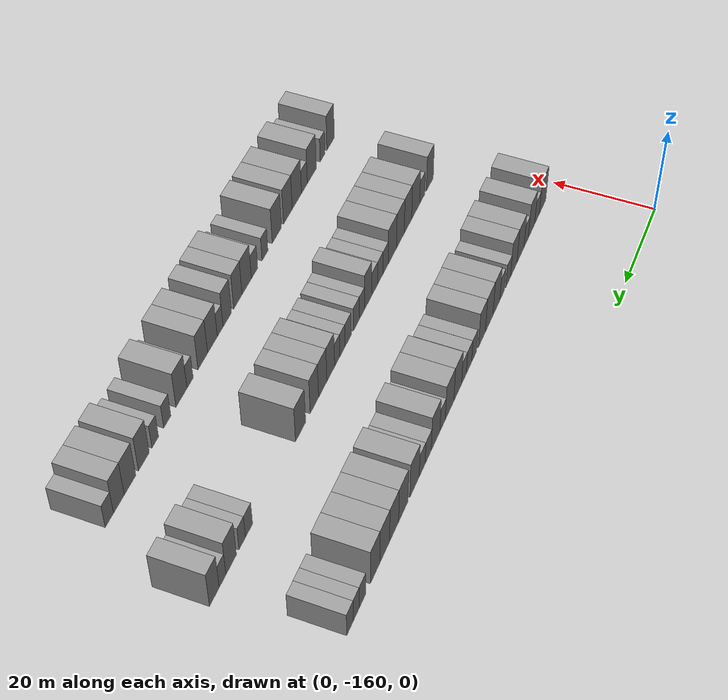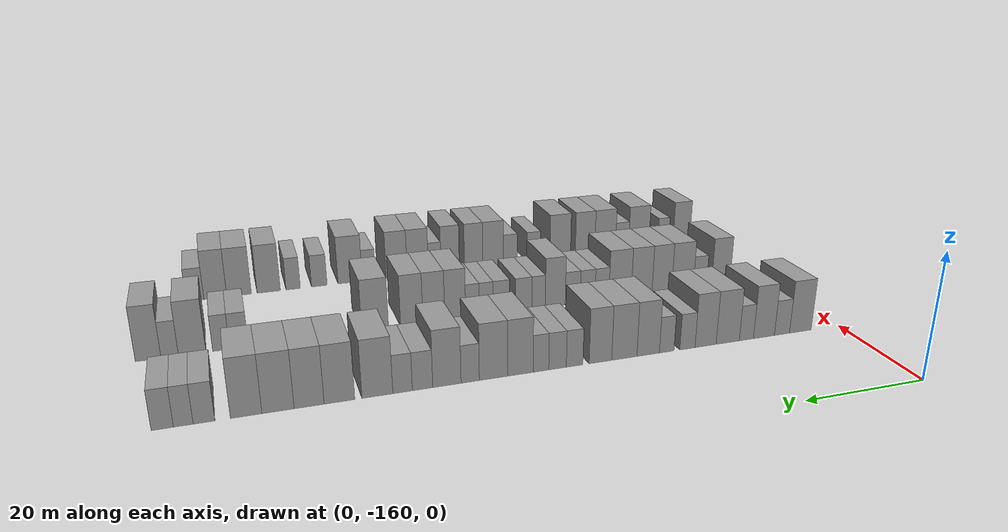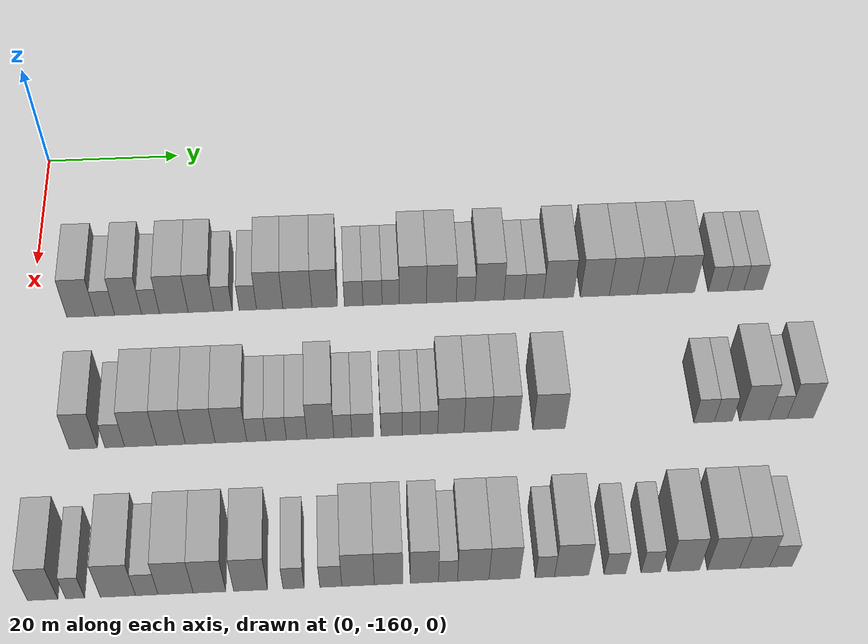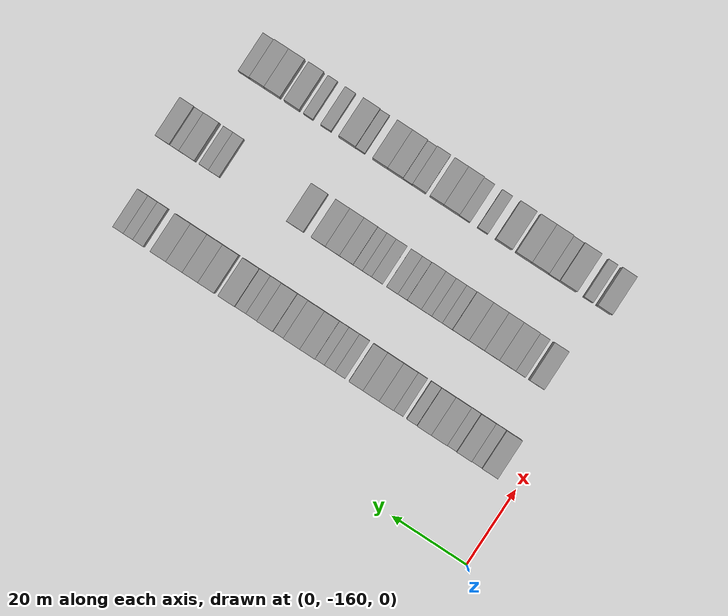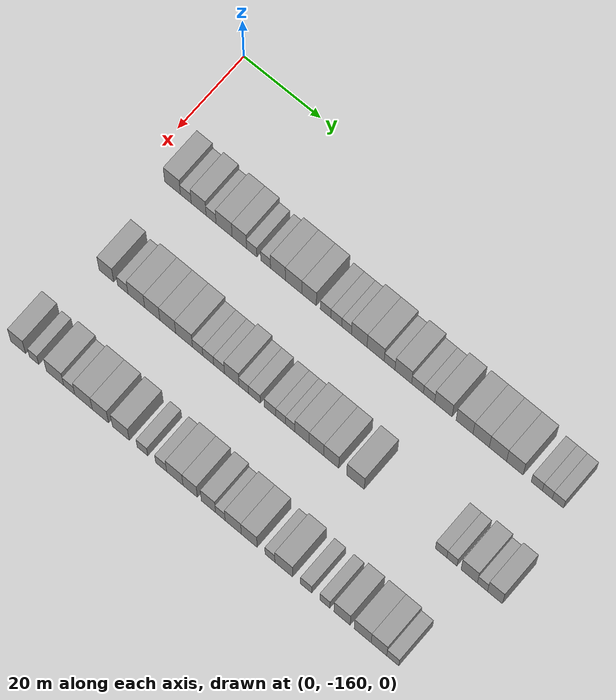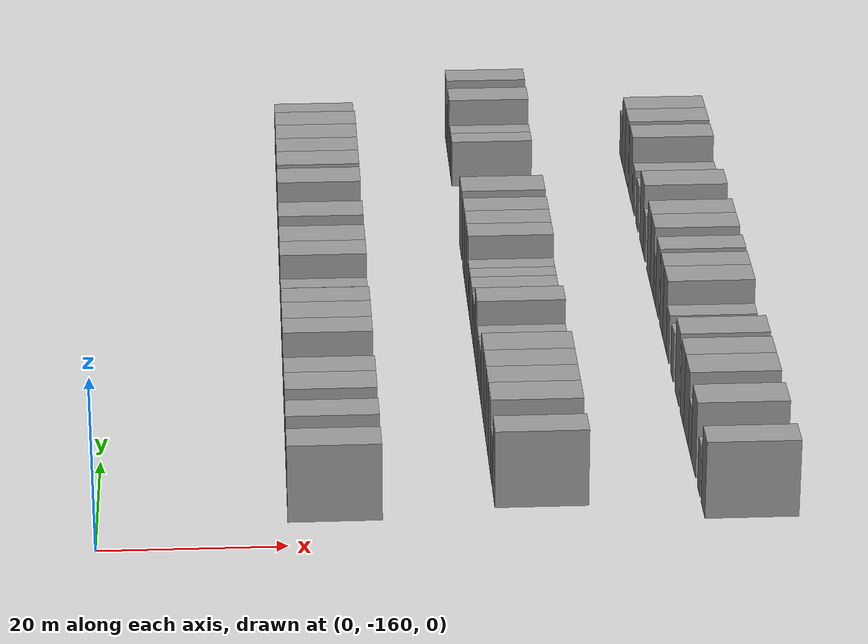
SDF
<sdf version="1.6">
 <world name="default">
  <model name="building_24">
   <static>1</static>
   <pose>25.0000 -152.7479 0 0.000000 0.000000 0.000000</pose>
   <link name="link">
    <pose>0 0 4.50 0 0 0</pose>
    <collision name="collision"><geometry><box><size>10.0000 4.0969 9.0000</size></box></geometry></collision>
    <visual name="visual">
     <cast_shadows>0</cast_shadows>
     <geometry><box><size>10.0000 4.0969 9.0000</size></box></geometry>
     <material>
      <script>
       <uri>model://grey_wall/materials/scripts</uri>
       <uri>model://grey_wall/materials/textures</uri>
       <name>vrc/grey_wall</name>
      </script>
     </material>
    </visual>
   </link>
  </model>
  <model name="building_25">
   <static>1</static>
   <pose>25.0000 -149.2939 0 0.000000 0.000000 0.000000</pose>
   <link name="link">
    <pose>0 0 3.00 0 0 0</pose>
    <collision name="collision"><geometry><box><size>10.0000 2.8112 6.0000</size></box></geometry></collision>
    <visual name="visual">
     <cast_shadows>0</cast_shadows>
     <geometry><box><size>10.0000 2.8112 6.0000</size></box></geometry>
     <material>
      <script>
       <uri>model://grey_wall/materials/scripts</uri>
       <uri>model://grey_wall/materials/textures</uri>
       <name>vrc/grey_wall</name>
      </script>
     </material>
    </visual>
   </link>
  </model>
  <model name="building_26">
   <static>1</static>
   <pose>25.0000 -145.9537 0 0.000000 0.000000 0.000000</pose>
   <link name="link">
    <pose>0 0 4.50 0 0 0</pose>
    <collision name="collision"><geometry><box><size>10.0000 3.8691 9.0000</size></box></geometry></collision>
    <visual name="visual">
     <cast_shadows>0</cast_shadows>
     <geometry><box><size>10.0000 3.8691 9.0000</size></box></geometry>
     <material>
      <script>
       <uri>model://grey_wall/materials/scripts</uri>
       <uri>model://grey_wall/materials/textures</uri>
       <name>vrc/grey_wall</name>
      </script>
     </material>
    </visual>
   </link>
  </model>
  <model name="building_27">
   <static>1</static>
   <pose>25.0000 -142.7333 0 0.000000 0.000000 0.000000</pose>
   <link name="link">
    <pose>0 0 3.00 0 0 0</pose>
    <collision name="collision"><geometry><box><size>10.0000 2.5717 6.0000</size></box></geometry></collision>
    <visual name="visual">
     <cast_shadows>0</cast_shadows>
     <geometry><box><size>10.0000 2.5717 6.0000</size></box></geometry>
     <material>
      <script>
       <uri>model://grey_wall/materials/scripts</uri>
       <uri>model://grey_wall/materials/textures</uri>
       <name>vrc/grey_wall</name>
      </script>
     </material>
    </visual>
   </link>
  </model>
  <model name="building_28">
   <static>1</static>
   <pose>25.0000 -139.3684 0 0.000000 0.000000 0.000000</pose>
   <link name="link">
    <pose>0 0 4.50 0 0 0</pose>
    <collision name="collision"><geometry><box><size>10.0000 4.1580 9.0000</size></box></geometry></collision>
    <visual name="visual">
     <cast_shadows>0</cast_shadows>
     <geometry><box><size>10.0000 4.1580 9.0000</size></box></geometry>
     <material>
      <script>
       <uri>model://grey_wall/materials/scripts</uri>
       <uri>model://grey_wall/materials/textures</uri>
       <name>vrc/grey_wall</name>
      </script>
     </material>
    </visual>
   </link>
  </model>
  <model name="building_29">
   <static>1</static>
   <pose>25.0000 -135.4226 0 0.000000 0.000000 0.000000</pose>
   <link name="link">
    <pose>0 0 4.50 0 0 0</pose>
    <collision name="collision"><geometry><box><size>10.0000 3.7335 9.0000</size></box></geometry></collision>
    <visual name="visual">
     <cast_shadows>0</cast_shadows>
     <geometry><box><size>10.0000 3.7335 9.0000</size></box></geometry>
     <material>
      <script>
       <uri>model://grey_wall/materials/scripts</uri>
       <uri>model://grey_wall/materials/textures</uri>
       <name>vrc/grey_wall</name>
      </script>
     </material>
    </visual>
   </link>
  </model>
  <model name="building_30">
   <static>1</static>
   <pose>25.0000 -132.2289 0 0.000000 0.000000 0.000000</pose>
   <link name="link">
    <pose>0 0 3.00 0 0 0</pose>
    <collision name="collision"><geometry><box><size>10.0000 2.6539 6.0000</size></box></geometry></collision>
    <visual name="visual">
     <cast_shadows>0</cast_shadows>
     <geometry><box><size>10.0000 2.6539 6.0000</size></box></geometry>
     <material>
      <script>
       <uri>model://grey_wall/materials/scripts</uri>
       <uri>model://grey_wall/materials/textures</uri>
       <name>vrc/grey_wall</name>
      </script>
     </material>
    </visual>
   </link>
  </model>
  <model name="building_31">
   <static>1</static>
   <pose>25.0000 -128.6428 0 0.000000 0.000000 0.000000</pose>
   <link name="link">
    <pose>0 0 3.00 0 0 0</pose>
    <collision name="collision"><geometry><box><size>10.0000 2.5184 6.0000</size></box></geometry></collision>
    <visual name="visual">
     <cast_shadows>0</cast_shadows>
     <geometry><box><size>10.0000 2.5184 6.0000</size></box></geometry>
     <material>
      <script>
       <uri>model://grey_wall/materials/scripts</uri>
       <uri>model://grey_wall/materials/textures</uri>
       <name>vrc/grey_wall</name>
      </script>
     </material>
    </visual>
   </link>
  </model>
  <model name="building_32">
   <static>1</static>
   <pose>25.0000 -125.4761 0 0.000000 0.000000 0.000000</pose>
   <link name="link">
    <pose>0 0 4.50 0 0 0</pose>
    <collision name="collision"><geometry><box><size>10.0000 3.8151 9.0000</size></box></geometry></collision>
    <visual name="visual">
     <cast_shadows>0</cast_shadows>
     <geometry><box><size>10.0000 3.8151 9.0000</size></box></geometry>
     <material>
      <script>
       <uri>model://grey_wall/materials/scripts</uri>
       <uri>model://grey_wall/materials/textures</uri>
       <name>vrc/grey_wall</name>
      </script>
     </material>
    </visual>
   </link>
  </model>
  <model name="building_33">
   <static>1</static>
   <pose>25.0000 -121.4594 0 0.000000 0.000000 0.000000</pose>
   <link name="link">
    <pose>0 0 4.50 0 0 0</pose>
    <collision name="collision"><geometry><box><size>10.0000 4.2183 9.0000</size></box></geometry></collision>
    <visual name="visual">
     <cast_shadows>0</cast_shadows>
     <geometry><box><size>10.0000 4.2183 9.0000</size></box></geometry>
     <material>
      <script>
       <uri>model://grey_wall/materials/scripts</uri>
       <uri>model://grey_wall/materials/textures</uri>
       <name>vrc/grey_wall</name>
      </script>
     </material>
    </visual>
   </link>
  </model>
  <model name="building_34">
   <static>1</static>
   <pose>25.0000 -117.4892 0 0.000000 0.000000 0.000000</pose>
   <link name="link">
    <pose>0 0 4.50 0 0 0</pose>
    <collision name="collision"><geometry><box><size>10.0000 3.7220 9.0000</size></box></geometry></collision>
    <visual name="visual">
     <cast_shadows>0</cast_shadows>
     <geometry><box><size>10.0000 3.7220 9.0000</size></box></geometry>
     <material>
      <script>
       <uri>model://grey_wall/materials/scripts</uri>
       <uri>model://grey_wall/materials/textures</uri>
       <name>vrc/grey_wall</name>
      </script>
     </material>
    </visual>
   </link>
  </model>
  <model name="building_35">
   <static>1</static>
   <pose>25.0000 -113.2872 0 0.000000 0.000000 0.000000</pose>
   <link name="link">
    <pose>0 0 3.00 0 0 0</pose>
    <collision name="collision"><geometry><box><size>10.0000 2.6820 6.0000</size></box></geometry></collision>
    <visual name="visual">
     <cast_shadows>0</cast_shadows>
     <geometry><box><size>10.0000 2.6820 6.0000</size></box></geometry>
     <material>
      <script>
       <uri>model://grey_wall/materials/scripts</uri>
       <uri>model://grey_wall/materials/textures</uri>
       <name>vrc/grey_wall</name>
      </script>
     </material>
    </visual>
   </link>
  </model>
  <model name="building_36">
   <static>1</static>
   <pose>25.0000 -110.5451 0 0.000000 0.000000 0.000000</pose>
   <link name="link">
    <pose>0 0 3.00 0 0 0</pose>
    <collision name="collision"><geometry><box><size>10.0000 2.8020 6.0000</size></box></geometry></collision>
    <visual name="visual">
     <cast_shadows>0</cast_shadows>
     <geometry><box><size>10.0000 2.8020 6.0000</size></box></geometry>
     <material>
      <script>
       <uri>model://grey_wall/materials/scripts</uri>
       <uri>model://grey_wall/materials/textures</uri>
       <name>vrc/grey_wall</name>
      </script>
     </material>
    </visual>
   </link>
  </model>
  <model name="building_37">
   <static>1</static>
   <pose>25.0000 -107.9055 0 0.000000 0.000000 0.000000</pose>
   <link name="link">
    <pose>0 0 3.00 0 0 0</pose>
    <collision name="collision"><geometry><box><size>10.0000 2.4773 6.0000</size></box></geometry></collision>
    <visual name="visual">
     <cast_shadows>0</cast_shadows>
     <geometry><box><size>10.0000 2.4773 6.0000</size></box></geometry>
     <material>
      <script>
       <uri>model://grey_wall/materials/scripts</uri>
       <uri>model://grey_wall/materials/textures</uri>
       <name>vrc/grey_wall</name>
      </script>
     </material>
    </visual>
   </link>
  </model>
  <model name="building_38">
   <static>1</static>
   <pose>25.0000 -104.6841 0 0.000000 0.000000 0.000000</pose>
   <link name="link">
    <pose>0 0 4.50 0 0 0</pose>
    <collision name="collision"><geometry><box><size>10.0000 3.9654 9.0000</size></box></geometry></collision>
    <visual name="visual">
     <cast_shadows>0</cast_shadows>
     <geometry><box><size>10.0000 3.9654 9.0000</size></box></geometry>
     <material>
      <script>
       <uri>model://grey_wall/materials/scripts</uri>
       <uri>model://grey_wall/materials/textures</uri>
       <name>vrc/grey_wall</name>
      </script>
     </material>
    </visual>
   </link>
  </model>
  <model name="building_39">
   <static>1</static>
   <pose>25.0000 -100.5283 0 0.000000 0.000000 0.000000</pose>
   <link name="link">
    <pose>0 0 4.50 0 0 0</pose>
    <collision name="collision"><geometry><box><size>10.0000 4.3463 9.0000</size></box></geometry></collision>
    <visual name="visual">
     <cast_shadows>0</cast_shadows>
     <geometry><box><size>10.0000 4.3463 9.0000</size></box></geometry>
     <material>
      <script>
       <uri>model://grey_wall/materials/scripts</uri>
       <uri>model://grey_wall/materials/textures</uri>
       <name>vrc/grey_wall</name>
      </script>
     </material>
    </visual>
   </link>
  </model>
  <model name="building_40">
   <static>1</static>
   <pose>25.0000 -96.9759 0 0.000000 0.000000 0.000000</pose>
   <link name="link">
    <pose>0 0 3.00 0 0 0</pose>
    <collision name="collision"><geometry><box><size>10.0000 2.7586 6.0000</size></box></geometry></collision>
    <visual name="visual">
     <cast_shadows>0</cast_shadows>
     <geometry><box><size>10.0000 2.7586 6.0000</size></box></geometry>
     <material>
      <script>
       <uri>model://grey_wall/materials/scripts</uri>
       <uri>model://grey_wall/materials/textures</uri>
       <name>vrc/grey_wall</name>
      </script>
     </material>
    </visual>
   </link>
  </model>
  <model name="building_41">
   <static>1</static>
   <pose>25.0000 -93.4938 0 0.000000 0.000000 0.000000</pose>
   <link name="link">
    <pose>0 0 4.50 0 0 0</pose>
    <collision name="collision"><geometry><box><size>10.0000 4.2056 9.0000</size></box></geometry></collision>
    <visual name="visual">
     <cast_shadows>0</cast_shadows>
     <geometry><box><size>10.0000 4.2056 9.0000</size></box></geometry>
     <material>
      <script>
       <uri>model://grey_wall/materials/scripts</uri>
       <uri>model://grey_wall/materials/textures</uri>
       <name>vrc/grey_wall</name>
      </script>
     </material>
    </visual>
   </link>
  </model>
  <model name="building_42">
   <static>1</static>
   <pose>25.0000 -89.9001 0 0.000000 0.000000 0.000000</pose>
   <link name="link">
    <pose>0 0 3.00 0 0 0</pose>
    <collision name="collision"><geometry><box><size>10.0000 2.9819 6.0000</size></box></geometry></collision>
    <visual name="visual">
     <cast_shadows>0</cast_shadows>
     <geometry><box><size>10.0000 2.9819 6.0000</size></box></geometry>
     <material>
      <script>
       <uri>model://grey_wall/materials/scripts</uri>
       <uri>model://grey_wall/materials/textures</uri>
       <name>vrc/grey_wall</name>
      </script>
     </material>
    </visual>
   </link>
  </model>
  <model name="building_43">
   <static>1</static>
   <pose>25.0000 -86.9947 0 0.000000 0.000000 0.000000</pose>
   <link name="link">
    <pose>0 0 3.00 0 0 0</pose>
    <collision name="collision"><geometry><box><size>10.0000 2.8288 6.0000</size></box></geometry></collision>
    <visual name="visual">
     <cast_shadows>0</cast_shadows>
     <geometry><box><size>10.0000 2.8288 6.0000</size></box></geometry>
     <material>
      <script>
       <uri>model://grey_wall/materials/scripts</uri>
       <uri>model://grey_wall/materials/textures</uri>
       <name>vrc/grey_wall</name>
      </script>
     </material>
    </visual>
   </link>
  </model>
  <model name="building_44">
   <static>1</static>
   <pose>25.0000 -83.3818 0 0.000000 0.000000 0.000000</pose>
   <link name="link">
    <pose>0 0 4.50 0 0 0</pose>
    <collision name="collision"><geometry><box><size>10.0000 4.3971 9.0000</size></box></geometry></collision>
    <visual name="visual">
     <cast_shadows>0</cast_shadows>
     <geometry><box><size>10.0000 4.3971 9.0000</size></box></geometry>
     <material>
      <script>
       <uri>model://grey_wall/materials/scripts</uri>
       <uri>model://grey_wall/materials/textures</uri>
       <name>vrc/grey_wall</name>
      </script>
     </material>
    </visual>
   </link>
  </model>
  <model name="building_45">
   <static>1</static>
   <pose>25.0000 -78.0550 0 0.000000 0.000000 0.000000</pose>
   <link name="link">
    <pose>0 0 4.50 0 0 0</pose>
    <collision name="collision"><geometry><box><size>10.0000 4.2565 9.0000</size></box></geometry></collision>
    <visual name="visual">
     <cast_shadows>0</cast_shadows>
     <geometry><box><size>10.0000 4.2565 9.0000</size></box></geometry>
     <material>
      <script>
       <uri>model://grey_wall/materials/scripts</uri>
       <uri>model://grey_wall/materials/textures</uri>
       <name>vrc/grey_wall</name>
      </script>
     </material>
    </visual>
   </link>
  </model>
  <model name="building_46">
   <static>1</static>
   <pose>25.0000 -73.8800 0 0.000000 0.000000 0.000000</pose>
   <link name="link">
    <pose>0 0 4.50 0 0 0</pose>
    <collision name="collision"><geometry><box><size>10.0000 4.0935 9.0000</size></box></geometry></collision>
    <visual name="visual">
     <cast_shadows>0</cast_shadows>
     <geometry><box><size>10.0000 4.0935 9.0000</size></box></geometry>
     <material>
      <script>
       <uri>model://grey_wall/materials/scripts</uri>
       <uri>model://grey_wall/materials/textures</uri>
       <name>vrc/grey_wall</name>
      </script>
     </material>
    </visual>
   </link>
  </model>
  <model name="building_47">
   <static>1</static>
   <pose>25.0000 -69.6777 0 0.000000 0.000000 0.000000</pose>
   <link name="link">
    <pose>0 0 4.50 0 0 0</pose>
    <collision name="collision"><geometry><box><size>10.0000 4.3112 9.0000</size></box></geometry></collision>
    <visual name="visual">
     <cast_shadows>0</cast_shadows>
     <geometry><box><size>10.0000 4.3112 9.0000</size></box></geometry>
     <material>
      <script>
       <uri>model://grey_wall/materials/scripts</uri>
       <uri>model://grey_wall/materials/textures</uri>
       <name>vrc/grey_wall</name>
      </script>
     </material>
    </visual>
   </link>
  </model>
  <model name="building_48">
   <static>1</static>
   <pose>25.0000 -65.4500 0 0.000000 0.000000 0.000000</pose>
   <link name="link">
    <pose>0 0 4.50 0 0 0</pose>
    <collision name="collision"><geometry><box><size>10.0000 4.1443 9.0000</size></box></geometry></collision>
    <visual name="visual">
     <cast_shadows>0</cast_shadows>
     <geometry><box><size>10.0000 4.1443 9.0000</size></box></geometry>
     <material>
      <script>
       <uri>model://grey_wall/materials/scripts</uri>
       <uri>model://grey_wall/materials/textures</uri>
       <name>vrc/grey_wall</name>
      </script>
     </material>
    </visual>
   </link>
  </model>
  <model name="building_49">
   <static>1</static>
   <pose>25.0000 -59.9845 0 0.000000 0.000000 0.000000</pose>
   <link name="link">
    <pose>0 0 3.00 0 0 0</pose>
    <collision name="collision"><geometry><box><size>10.0000 2.7867 6.0000</size></box></geometry></collision>
    <visual name="visual">
     <cast_shadows>0</cast_shadows>
     <geometry><box><size>10.0000 2.7867 6.0000</size></box></geometry>
     <material>
      <script>
       <uri>model://grey_wall/materials/scripts</uri>
       <uri>model://grey_wall/materials/textures</uri>
       <name>vrc/grey_wall</name>
      </script>
     </material>
    </visual>
   </link>
  </model>
  <model name="building_50">
   <static>1</static>
   <pose>25.0000 -57.3420 0 0.000000 0.000000 0.000000</pose>
   <link name="link">
    <pose>0 0 3.00 0 0 0</pose>
    <collision name="collision"><geometry><box><size>10.0000 2.4983 6.0000</size></box></geometry></collision>
    <visual name="visual">
     <cast_shadows>0</cast_shadows>
     <geometry><box><size>10.0000 2.4983 6.0000</size></box></geometry>
     <material>
      <script>
       <uri>model://grey_wall/materials/scripts</uri>
       <uri>model://grey_wall/materials/textures</uri>
       <name>vrc/grey_wall</name>
      </script>
     </material>
    </visual>
   </link>
  </model>
  <model name="building_51">
   <static>1</static>
   <pose>25.0000 -54.7018 0 0.000000 0.000000 0.000000</pose>
   <link name="link">
    <pose>0 0 3.00 0 0 0</pose>
    <collision name="collision"><geometry><box><size>10.0000 2.7822 6.0000</size></box></geometry></collision>
    <visual name="visual">
     <cast_shadows>0</cast_shadows>
     <geometry><box><size>10.0000 2.7822 6.0000</size></box></geometry>
     <material>
      <script>
       <uri>model://grey_wall/materials/scripts</uri>
       <uri>model://grey_wall/materials/textures</uri>
       <name>vrc/grey_wall</name>
      </script>
     </material>
    </visual>
   </link>
  </model>
  <model name="building_149">
   <static>1</static>
   <pose>47.0000 -150.7483 0 0.000000 0.000000 0.000000</pose>
   <link name="link">
    <pose>0 0 4.50 0 0 0</pose>
    <collision name="collision"><geometry><box><size>10.0000 3.8109 9.0000</size></box></geometry></collision>
    <visual name="visual">
     <cast_shadows>0</cast_shadows>
     <geometry><box><size>10.0000 3.8109 9.0000</size></box></geometry>
     <material>
      <script>
       <uri>model://grey_wall/materials/scripts</uri>
       <uri>model://grey_wall/materials/textures</uri>
       <name>vrc/grey_wall</name>
      </script>
     </material>
    </visual>
   </link>
  </model>
  <model name="building_150">
   <static>1</static>
   <pose>47.0000 -146.4935 0 0.000000 0.000000 0.000000</pose>
   <link name="link">
    <pose>0 0 3.00 0 0 0</pose>
    <collision name="collision"><geometry><box><size>10.0000 2.6988 6.0000</size></box></geometry></collision>
    <visual name="visual">
     <cast_shadows>0</cast_shadows>
     <geometry><box><size>10.0000 2.6988 6.0000</size></box></geometry>
     <material>
      <script>
       <uri>model://grey_wall/materials/scripts</uri>
       <uri>model://grey_wall/materials/textures</uri>
       <name>vrc/grey_wall</name>
      </script>
     </material>
    </visual>
   </link>
  </model>
  <model name="building_151">
   <static>1</static>
   <pose>47.0000 -142.9771 0 0.000000 0.000000 0.000000</pose>
   <link name="link">
    <pose>0 0 4.50 0 0 0</pose>
    <collision name="collision"><geometry><box><size>10.0000 4.3339 9.0000</size></box></geometry></collision>
    <visual name="visual">
     <cast_shadows>0</cast_shadows>
     <geometry><box><size>10.0000 4.3339 9.0000</size></box></geometry>
     <material>
      <script>
       <uri>model://grey_wall/materials/scripts</uri>
       <uri>model://grey_wall/materials/textures</uri>
       <name>vrc/grey_wall</name>
      </script>
     </material>
    </visual>
   </link>
  </model>
  <model name="building_152">
   <static>1</static>
   <pose>47.0000 -138.8488 0 0.000000 0.000000 0.000000</pose>
   <link name="link">
    <pose>0 0 4.50 0 0 0</pose>
    <collision name="collision"><geometry><box><size>10.0000 3.9226 9.0000</size></box></geometry></collision>
    <visual name="visual">
     <cast_shadows>0</cast_shadows>
     <geometry><box><size>10.0000 3.9226 9.0000</size></box></geometry>
     <material>
      <script>
       <uri>model://grey_wall/materials/scripts</uri>
       <uri>model://grey_wall/materials/textures</uri>
       <name>vrc/grey_wall</name>
      </script>
     </material>
    </visual>
   </link>
  </model>
  <model name="building_153">
   <static>1</static>
   <pose>47.0000 -134.8536 0 0.000000 0.000000 0.000000</pose>
   <link name="link">
    <pose>0 0 4.50 0 0 0</pose>
    <collision name="collision"><geometry><box><size>10.0000 4.0679 9.0000</size></box></geometry></collision>
    <visual name="visual">
     <cast_shadows>0</cast_shadows>
     <geometry><box><size>10.0000 4.0679 9.0000</size></box></geometry>
     <material>
      <script>
       <uri>model://grey_wall/materials/scripts</uri>
       <uri>model://grey_wall/materials/textures</uri>
       <name>vrc/grey_wall</name>
      </script>
     </material>
    </visual>
   </link>
  </model>
  <model name="building_154">
   <static>1</static>
   <pose>47.0000 -130.6628 0 0.000000 0.000000 0.000000</pose>
   <link name="link">
    <pose>0 0 4.50 0 0 0</pose>
    <collision name="collision"><geometry><box><size>10.0000 4.3137 9.0000</size></box></geometry></collision>
    <visual name="visual">
     <cast_shadows>0</cast_shadows>
     <geometry><box><size>10.0000 4.3137 9.0000</size></box></geometry>
     <material>
      <script>
       <uri>model://grey_wall/materials/scripts</uri>
       <uri>model://grey_wall/materials/textures</uri>
       <name>vrc/grey_wall</name>
      </script>
     </material>
    </visual>
   </link>
  </model>
  <model name="building_155">
   <static>1</static>
   <pose>47.0000 -127.1813 0 0.000000 0.000000 0.000000</pose>
   <link name="link">
    <pose>0 0 3.00 0 0 0</pose>
    <collision name="collision"><geometry><box><size>10.0000 2.6493 6.0000</size></box></geometry></collision>
    <visual name="visual">
     <cast_shadows>0</cast_shadows>
     <geometry><box><size>10.0000 2.6493 6.0000</size></box></geometry>
     <material>
      <script>
       <uri>model://grey_wall/materials/scripts</uri>
       <uri>model://grey_wall/materials/textures</uri>
       <name>vrc/grey_wall</name>
      </script>
     </material>
    </visual>
   </link>
  </model>
  <model name="building_156">
   <static>1</static>
   <pose>47.0000 -124.4696 0 0.000000 0.000000 0.000000</pose>
   <link name="link">
    <pose>0 0 3.00 0 0 0</pose>
    <collision name="collision"><geometry><box><size>10.0000 2.7742 6.0000</size></box></geometry></collision>
    <visual name="visual">
     <cast_shadows>0</cast_shadows>
     <geometry><box><size>10.0000 2.7742 6.0000</size></box></geometry>
     <material>
      <script>
       <uri>model://grey_wall/materials/scripts</uri>
       <uri>model://grey_wall/materials/textures</uri>
       <name>vrc/grey_wall</name>
      </script>
     </material>
    </visual>
   </link>
  </model>
  <model name="building_157">
   <static>1</static>
   <pose>47.0000 -121.6845 0 0.000000 0.000000 0.000000</pose>
   <link name="link">
    <pose>0 0 3.00 0 0 0</pose>
    <collision name="collision"><geometry><box><size>10.0000 2.7959 6.0000</size></box></geometry></collision>
    <visual name="visual">
     <cast_shadows>0</cast_shadows>
     <geometry><box><size>10.0000 2.7959 6.0000</size></box></geometry>
     <material>
      <script>
       <uri>model://grey_wall/materials/scripts</uri>
       <uri>model://grey_wall/materials/textures</uri>
       <name>vrc/grey_wall</name>
      </script>
     </material>
    </visual>
   </link>
  </model>
  <model name="building_158">
   <static>1</static>
   <pose>47.0000 -118.4428 0 0.000000 0.000000 0.000000</pose>
   <link name="link">
    <pose>0 0 4.50 0 0 0</pose>
    <collision name="collision"><geometry><box><size>10.0000 3.6875 9.0000</size></box></geometry></collision>
    <visual name="visual">
     <cast_shadows>0</cast_shadows>
     <geometry><box><size>10.0000 3.6875 9.0000</size></box></geometry>
     <material>
      <script>
       <uri>model://grey_wall/materials/scripts</uri>
       <uri>model://grey_wall/materials/textures</uri>
       <name>vrc/grey_wall</name>
      </script>
     </material>
    </visual>
   </link>
  </model>
  <model name="building_159">
   <static>1</static>
   <pose>47.0000 -115.3745 0 0.000000 0.000000 0.000000</pose>
   <link name="link">
    <pose>0 0 3.00 0 0 0</pose>
    <collision name="collision"><geometry><box><size>10.0000 2.4492 6.0000</size></box></geometry></collision>
    <visual name="visual">
     <cast_shadows>0</cast_shadows>
     <geometry><box><size>10.0000 2.4492 6.0000</size></box></geometry>
     <material>
      <script>
       <uri>model://grey_wall/materials/scripts</uri>
       <uri>model://grey_wall/materials/textures</uri>
       <name>vrc/grey_wall</name>
      </script>
     </material>
    </visual>
   </link>
  </model>
  <model name="building_160">
   <static>1</static>
   <pose>47.0000 -112.6530 0 0.000000 0.000000 0.000000</pose>
   <link name="link">
    <pose>0 0 3.00 0 0 0</pose>
    <collision name="collision"><geometry><box><size>10.0000 2.9938 6.0000</size></box></geometry></collision>
    <visual name="visual">
     <cast_shadows>0</cast_shadows>
     <geometry><box><size>10.0000 2.9938 6.0000</size></box></geometry>
     <material>
      <script>
       <uri>model://grey_wall/materials/scripts</uri>
       <uri>model://grey_wall/materials/textures</uri>
       <name>vrc/grey_wall</name>
      </script>
     </material>
    </visual>
   </link>
  </model>
  <model name="building_161">
   <static>1</static>
   <pose>47.0000 -108.6886 0 0.000000 0.000000 0.000000</pose>
   <link name="link">
    <pose>0 0 3.00 0 0 0</pose>
    <collision name="collision"><geometry><box><size>10.0000 2.9349 6.0000</size></box></geometry></collision>
    <visual name="visual">
     <cast_shadows>0</cast_shadows>
     <geometry><box><size>10.0000 2.9349 6.0000</size></box></geometry>
     <material>
      <script>
       <uri>model://grey_wall/materials/scripts</uri>
       <uri>model://grey_wall/materials/textures</uri>
       <name>vrc/grey_wall</name>
      </script>
     </material>
    </visual>
   </link>
  </model>
  <model name="building_162">
   <static>1</static>
   <pose>47.0000 -105.9998 0 0.000000 0.000000 0.000000</pose>
   <link name="link">
    <pose>0 0 3.00 0 0 0</pose>
    <collision name="collision"><geometry><box><size>10.0000 2.4426 6.0000</size></box></geometry></collision>
    <visual name="visual">
     <cast_shadows>0</cast_shadows>
     <geometry><box><size>10.0000 2.4426 6.0000</size></box></geometry>
     <material>
      <script>
       <uri>model://grey_wall/materials/scripts</uri>
       <uri>model://grey_wall/materials/textures</uri>
       <name>vrc/grey_wall</name>
      </script>
     </material>
    </visual>
   </link>
  </model>
  <model name="building_163">
   <static>1</static>
   <pose>47.0000 -103.5715 0 0.000000 0.000000 0.000000</pose>
   <link name="link">
    <pose>0 0 3.00 0 0 0</pose>
    <collision name="collision"><geometry><box><size>10.0000 2.4141 6.0000</size></box></geometry></collision>
    <visual name="visual">
     <cast_shadows>0</cast_shadows>
     <geometry><box><size>10.0000 2.4141 6.0000</size></box></geometry>
     <material>
      <script>
       <uri>model://grey_wall/materials/scripts</uri>
       <uri>model://grey_wall/materials/textures</uri>
       <name>vrc/grey_wall</name>
      </script>
     </material>
    </visual>
   </link>
  </model>
  <model name="building_164">
   <static>1</static>
   <pose>47.0000 -100.5625 0 0.000000 0.000000 0.000000</pose>
   <link name="link">
    <pose>0 0 4.50 0 0 0</pose>
    <collision name="collision"><geometry><box><size>10.0000 3.6038 9.0000</size></box></geometry></collision>
    <visual name="visual">
     <cast_shadows>0</cast_shadows>
     <geometry><box><size>10.0000 3.6038 9.0000</size></box></geometry>
     <material>
      <script>
       <uri>model://grey_wall/materials/scripts</uri>
       <uri>model://grey_wall/materials/textures</uri>
       <name>vrc/grey_wall</name>
      </script>
     </material>
    </visual>
   </link>
  </model>
  <model name="building_165">
   <static>1</static>
   <pose>47.0000 -96.8923 0 0.000000 0.000000 0.000000</pose>
   <link name="link">
    <pose>0 0 4.50 0 0 0</pose>
    <collision name="collision"><geometry><box><size>10.0000 3.7366 9.0000</size></box></geometry></collision>
    <visual name="visual">
     <cast_shadows>0</cast_shadows>
     <geometry><box><size>10.0000 3.7366 9.0000</size></box></geometry>
     <material>
      <script>
       <uri>model://grey_wall/materials/scripts</uri>
       <uri>model://grey_wall/materials/textures</uri>
       <name>vrc/grey_wall</name>
      </script>
     </material>
    </visual>
   </link>
  </model>
  <model name="building_166">
   <static>1</static>
   <pose>47.0000 -93.1430 0 0.000000 0.000000 0.000000</pose>
   <link name="link">
    <pose>0 0 4.50 0 0 0</pose>
    <collision name="collision"><geometry><box><size>10.0000 3.7621 9.0000</size></box></geometry></collision>
    <visual name="visual">
     <cast_shadows>0</cast_shadows>
     <geometry><box><size>10.0000 3.7621 9.0000</size></box></geometry>
     <material>
      <script>
       <uri>model://grey_wall/materials/scripts</uri>
       <uri>model://grey_wall/materials/textures</uri>
       <name>vrc/grey_wall</name>
      </script>
     </material>
    </visual>
   </link>
  </model>
  <model name="building_167">
   <static>1</static>
   <pose>47.0000 -87.0473 0 0.000000 0.000000 0.000000</pose>
   <link name="link">
    <pose>0 0 4.50 0 0 0</pose>
    <collision name="collision"><geometry><box><size>10.0000 4.4292 9.0000</size></box></geometry></collision>
    <visual name="visual">
     <cast_shadows>0</cast_shadows>
     <geometry><box><size>10.0000 4.4292 9.0000</size></box></geometry>
     <material>
      <script>
       <uri>model://grey_wall/materials/scripts</uri>
       <uri>model://grey_wall/materials/textures</uri>
       <name>vrc/grey_wall</name>
      </script>
     </material>
    </visual>
   </link>
  </model>
  <model name="building_168">
   <static>1</static>
   <pose>47.0000 -65.5724 0 0.000000 0.000000 0.000000</pose>
   <link name="link">
    <pose>0 0 3.00 0 0 0</pose>
    <collision name="collision"><geometry><box><size>10.0000 2.8402 6.0000</size></box></geometry></collision>
    <visual name="visual">
     <cast_shadows>0</cast_shadows>
     <geometry><box><size>10.0000 2.8402 6.0000</size></box></geometry>
     <material>
      <script>
       <uri>model://grey_wall/materials/scripts</uri>
       <uri>model://grey_wall/materials/textures</uri>
       <name>vrc/grey_wall</name>
      </script>
     </material>
    </visual>
   </link>
  </model>
  <model name="building_169">
   <static>1</static>
   <pose>47.0000 -62.8886 0 0.000000 0.000000 0.000000</pose>
   <link name="link">
    <pose>0 0 3.00 0 0 0</pose>
    <collision name="collision"><geometry><box><size>10.0000 2.5274 6.0000</size></box></geometry></collision>
    <visual name="visual">
     <cast_shadows>0</cast_shadows>
     <geometry><box><size>10.0000 2.5274 6.0000</size></box></geometry>
     <material>
      <script>
       <uri>model://grey_wall/materials/scripts</uri>
       <uri>model://grey_wall/materials/textures</uri>
       <name>vrc/grey_wall</name>
      </script>
     </material>
    </visual>
   </link>
  </model>
  <model name="building_170">
   <static>1</static>
   <pose>47.0000 -58.5935 0 0.000000 0.000000 0.000000</pose>
   <link name="link">
    <pose>0 0 4.50 0 0 0</pose>
    <collision name="collision"><geometry><box><size>10.0000 4.0627 9.0000</size></box></geometry></collision>
    <visual name="visual">
     <cast_shadows>0</cast_shadows>
     <geometry><box><size>10.0000 4.0627 9.0000</size></box></geometry>
     <material>
      <script>
       <uri>model://grey_wall/materials/scripts</uri>
       <uri>model://grey_wall/materials/textures</uri>
       <name>vrc/grey_wall</name>
      </script>
     </material>
    </visual>
   </link>
  </model>
  <model name="building_171">
   <static>1</static>
   <pose>47.0000 -55.2957 0 0.000000 0.000000 0.000000</pose>
   <link name="link">
    <pose>0 0 3.00 0 0 0</pose>
    <collision name="collision"><geometry><box><size>10.0000 2.5330 6.0000</size></box></geometry></collision>
    <visual name="visual">
     <cast_shadows>0</cast_shadows>
     <geometry><box><size>10.0000 2.5330 6.0000</size></box></geometry>
     <material>
      <script>
       <uri>model://grey_wall/materials/scripts</uri>
       <uri>model://grey_wall/materials/textures</uri>
       <name>vrc/grey_wall</name>
      </script>
     </material>
    </visual>
   </link>
  </model>
  <model name="building_172">
   <static>1</static>
   <pose>47.0000 -52.1849 0 0.000000 0.000000 0.000000</pose>
   <link name="link">
    <pose>0 0 4.50 0 0 0</pose>
    <collision name="collision"><geometry><box><size>10.0000 3.6887 9.0000</size></box></geometry></collision>
    <visual name="visual">
     <cast_shadows>0</cast_shadows>
     <geometry><box><size>10.0000 3.6887 9.0000</size></box></geometry>
     <material>
      <script>
       <uri>model://grey_wall/materials/scripts</uri>
       <uri>model://grey_wall/materials/textures</uri>
       <name>vrc/grey_wall</name>
      </script>
     </material>
    </visual>
   </link>
  </model>
  <model name="building_276">
   <static>1</static>
   <pose>69.0000 -154.2669 0 0.000000 0.000000 0.000000</pose>
   <link name="link">
    <pose>0 0 4.50 0 0 0</pose>
    <collision name="collision"><geometry><box><size>10.0000 3.8401 9.0000</size></box></geometry></collision>
    <visual name="visual">
     <cast_shadows>0</cast_shadows>
     <geometry><box><size>10.0000 3.8401 9.0000</size></box></geometry>
     <material>
      <script>
       <uri>model://grey_wall/materials/scripts</uri>
       <uri>model://grey_wall/materials/textures</uri>
       <name>vrc/grey_wall</name>
      </script>
     </material>
    </visual>
   </link>
  </model>
  <model name="building_277">
   <static>1</static>
   <pose>69.0000 -150.1400 0 0.000000 0.000000 0.000000</pose>
   <link name="link">
    <pose>0 0 3.00 0 0 0</pose>
    <collision name="collision"><geometry><box><size>10.0000 2.4136 6.0000</size></box></geometry></collision>
    <visual name="visual">
     <cast_shadows>0</cast_shadows>
     <geometry><box><size>10.0000 2.4136 6.0000</size></box></geometry>
     <material>
      <script>
       <uri>model://grey_wall/materials/scripts</uri>
       <uri>model://grey_wall/materials/textures</uri>
       <name>vrc/grey_wall</name>
      </script>
     </material>
    </visual>
   </link>
  </model>
  <model name="building_278">
   <static>1</static>
   <pose>69.0000 -144.6911 0 0.000000 0.000000 0.000000</pose>
   <link name="link">
    <pose>0 0 4.50 0 0 0</pose>
    <collision name="collision"><geometry><box><size>10.0000 4.4843 9.0000</size></box></geometry></collision>
    <visual name="visual">
     <cast_shadows>0</cast_shadows>
     <geometry><box><size>10.0000 4.4843 9.0000</size></box></geometry>
     <material>
      <script>
       <uri>model://grey_wall/materials/scripts</uri>
       <uri>model://grey_wall/materials/textures</uri>
       <name>vrc/grey_wall</name>
      </script>
     </material>
    </visual>
   </link>
  </model>
  <model name="building_279">
   <static>1</static>
   <pose>69.0000 -141.0136 0 0.000000 0.000000 0.000000</pose>
   <link name="link">
    <pose>0 0 3.00 0 0 0</pose>
    <collision name="collision"><geometry><box><size>10.0000 2.8707 6.0000</size></box></geometry></collision>
    <visual name="visual">
     <cast_shadows>0</cast_shadows>
     <geometry><box><size>10.0000 2.8707 6.0000</size></box></geometry>
     <material>
      <script>
       <uri>model://grey_wall/materials/scripts</uri>
       <uri>model://grey_wall/materials/textures</uri>
       <name>vrc/grey_wall</name>
      </script>
     </material>
    </visual>
   </link>
  </model>
  <model name="building_280">
   <static>1</static>
   <pose>69.0000 -137.3296 0 0.000000 0.000000 0.000000</pose>
   <link name="link">
    <pose>0 0 4.50 0 0 0</pose>
    <collision name="collision"><geometry><box><size>10.0000 4.4974 9.0000</size></box></geometry></collision>
    <visual name="visual">
     <cast_shadows>0</cast_shadows>
     <geometry><box><size>10.0000 4.4974 9.0000</size></box></geometry>
     <material>
      <script>
       <uri>model://grey_wall/materials/scripts</uri>
       <uri>model://grey_wall/materials/textures</uri>
       <name>vrc/grey_wall</name>
      </script>
     </material>
    </visual>
   </link>
  </model>
  <model name="building_281">
   <static>1</static>
   <pose>69.0000 -132.9925 0 0.000000 0.000000 0.000000</pose>
   <link name="link">
    <pose>0 0 4.50 0 0 0</pose>
    <collision name="collision"><geometry><box><size>10.0000 4.1769 9.0000</size></box></geometry></collision>
    <visual name="visual">
     <cast_shadows>0</cast_shadows>
     <geometry><box><size>10.0000 4.1769 9.0000</size></box></geometry>
     <material>
      <script>
       <uri>model://grey_wall/materials/scripts</uri>
       <uri>model://grey_wall/materials/textures</uri>
       <name>vrc/grey_wall</name>
      </script>
     </material>
    </visual>
   </link>
  </model>
  <model name="building_282">
   <static>1</static>
   <pose>69.0000 -127.7389 0 0.000000 0.000000 0.000000</pose>
   <link name="link">
    <pose>0 0 4.50 0 0 0</pose>
    <collision name="collision"><geometry><box><size>10.0000 4.3303 9.0000</size></box></geometry></collision>
    <visual name="visual">
     <cast_shadows>0</cast_shadows>
     <geometry><box><size>10.0000 4.3303 9.0000</size></box></geometry>
     <material>
      <script>
       <uri>model://grey_wall/materials/scripts</uri>
       <uri>model://grey_wall/materials/textures</uri>
       <name>vrc/grey_wall</name>
      </script>
     </material>
    </visual>
   </link>
  </model>
  <model name="building_283">
   <static>1</static>
   <pose>69.0000 -122.2175 0 0.000000 0.000000 0.000000</pose>
   <link name="link">
    <pose>0 0 3.00 0 0 0</pose>
    <collision name="collision"><geometry><box><size>10.0000 2.7126 6.0000</size></box></geometry></collision>
    <visual name="visual">
     <cast_shadows>0</cast_shadows>
     <geometry><box><size>10.0000 2.7126 6.0000</size></box></geometry>
     <material>
      <script>
       <uri>model://grey_wall/materials/scripts</uri>
       <uri>model://grey_wall/materials/textures</uri>
       <name>vrc/grey_wall</name>
      </script>
     </material>
    </visual>
   </link>
  </model>
  <model name="building_284">
   <static>1</static>
   <pose>69.0000 -117.4512 0 0.000000 0.000000 0.000000</pose>
   <link name="link">
    <pose>0 0 3.00 0 0 0</pose>
    <collision name="collision"><geometry><box><size>10.0000 2.8199 6.0000</size></box></geometry></collision>
    <visual name="visual">
     <cast_shadows>0</cast_shadows>
     <geometry><box><size>10.0000 2.8199 6.0000</size></box></geometry>
     <material>
      <script>
       <uri>model://grey_wall/materials/scripts</uri>
       <uri>model://grey_wall/materials/textures</uri>
       <name>vrc/grey_wall</name>
      </script>
     </material>
    </visual>
   </link>
  </model>
  <model name="building_285">
   <static>1</static>
   <pose>69.0000 -113.9555 0 0.000000 0.000000 0.000000</pose>
   <link name="link">
    <pose>0 0 4.50 0 0 0</pose>
    <collision name="collision"><geometry><box><size>10.0000 4.1716 9.0000</size></box></geometry></collision>
    <visual name="visual">
     <cast_shadows>0</cast_shadows>
     <geometry><box><size>10.0000 4.1716 9.0000</size></box></geometry>
     <material>
      <script>
       <uri>model://grey_wall/materials/scripts</uri>
       <uri>model://grey_wall/materials/textures</uri>
       <name>vrc/grey_wall</name>
      </script>
     </material>
    </visual>
   </link>
  </model>
  <model name="building_286">
   <static>1</static>
   <pose>69.0000 -110.0388 0 0.000000 0.000000 0.000000</pose>
   <link name="link">
    <pose>0 0 4.50 0 0 0</pose>
    <collision name="collision"><geometry><box><size>10.0000 3.6617 9.0000</size></box></geometry></collision>
    <visual name="visual">
     <cast_shadows>0</cast_shadows>
     <geometry><box><size>10.0000 3.6617 9.0000</size></box></geometry>
     <material>
      <script>
       <uri>model://grey_wall/materials/scripts</uri>
       <uri>model://grey_wall/materials/textures</uri>
       <name>vrc/grey_wall</name>
      </script>
     </material>
    </visual>
   </link>
  </model>
  <model name="building_287">
   <static>1</static>
   <pose>69.0000 -105.4050 0 0.000000 0.000000 0.000000</pose>
   <link name="link">
    <pose>0 0 4.50 0 0 0</pose>
    <collision name="collision"><geometry><box><size>10.0000 3.6060 9.0000</size></box></geometry></collision>
    <visual name="visual">
     <cast_shadows>0</cast_shadows>
     <geometry><box><size>10.0000 3.6060 9.0000</size></box></geometry>
     <material>
      <script>
       <uri>model://grey_wall/materials/scripts</uri>
       <uri>model://grey_wall/materials/textures</uri>
       <name>vrc/grey_wall</name>
      </script>
     </material>
    </visual>
   </link>
  </model>
  <model name="building_288">
   <static>1</static>
   <pose>69.0000 -102.3815 0 0.000000 0.000000 0.000000</pose>
   <link name="link">
    <pose>0 0 3.00 0 0 0</pose>
    <collision name="collision"><geometry><box><size>10.0000 2.4408 6.0000</size></box></geometry></collision>
    <visual name="visual">
     <cast_shadows>0</cast_shadows>
     <geometry><box><size>10.0000 2.4408 6.0000</size></box></geometry>
     <material>
      <script>
       <uri>model://grey_wall/materials/scripts</uri>
       <uri>model://grey_wall/materials/textures</uri>
       <name>vrc/grey_wall</name>
      </script>
     </material>
    </visual>
   </link>
  </model>
  <model name="building_289">
   <static>1</static>
   <pose>69.0000 -99.1207 0 0.000000 0.000000 0.000000</pose>
   <link name="link">
    <pose>0 0 4.50 0 0 0</pose>
    <collision name="collision"><geometry><box><size>10.0000 4.0807 9.0000</size></box></geometry></collision>
    <visual name="visual">
     <cast_shadows>0</cast_shadows>
     <geometry><box><size>10.0000 4.0807 9.0000</size></box></geometry>
     <material>
      <script>
       <uri>model://grey_wall/materials/scripts</uri>
       <uri>model://grey_wall/materials/textures</uri>
       <name>vrc/grey_wall</name>
      </script>
     </material>
    </visual>
   </link>
  </model>
  <model name="building_290">
   <static>1</static>
   <pose>69.0000 -95.0863 0 0.000000 0.000000 0.000000</pose>
   <link name="link">
    <pose>0 0 4.50 0 0 0</pose>
    <collision name="collision"><geometry><box><size>10.0000 3.9881 9.0000</size></box></geometry></collision>
    <visual name="visual">
     <cast_shadows>0</cast_shadows>
     <geometry><box><size>10.0000 3.9881 9.0000</size></box></geometry>
     <material>
      <script>
       <uri>model://grey_wall/materials/scripts</uri>
       <uri>model://grey_wall/materials/textures</uri>
       <name>vrc/grey_wall</name>
      </script>
     </material>
    </visual>
   </link>
  </model>
  <model name="building_291">
   <static>1</static>
   <pose>69.0000 -89.8541 0 0.000000 0.000000 0.000000</pose>
   <link name="link">
    <pose>0 0 3.00 0 0 0</pose>
    <collision name="collision"><geometry><box><size>10.0000 2.4762 6.0000</size></box></geometry></collision>
    <visual name="visual">
     <cast_shadows>0</cast_shadows>
     <geometry><box><size>10.0000 2.4762 6.0000</size></box></geometry>
     <material>
      <script>
       <uri>model://grey_wall/materials/scripts</uri>
       <uri>model://grey_wall/materials/textures</uri>
       <name>vrc/grey_wall</name>
      </script>
     </material>
    </visual>
   </link>
  </model>
  <model name="building_292">
   <static>1</static>
   <pose>69.0000 -86.3943 0 0.000000 0.000000 0.000000</pose>
   <link name="link">
    <pose>0 0 4.50 0 0 0</pose>
    <collision name="collision"><geometry><box><size>10.0000 4.4435 9.0000</size></box></geometry></collision>
    <visual name="visual">
     <cast_shadows>0</cast_shadows>
     <geometry><box><size>10.0000 4.4435 9.0000</size></box></geometry>
     <material>
      <script>
       <uri>model://grey_wall/materials/scripts</uri>
       <uri>model://grey_wall/materials/textures</uri>
       <name>vrc/grey_wall</name>
      </script>
     </material>
    </visual>
   </link>
  </model>
  <model name="building_293">
   <static>1</static>
   <pose>69.0000 -80.7674 0 0.000000 0.000000 0.000000</pose>
   <link name="link">
    <pose>0 0 3.00 0 0 0</pose>
    <collision name="collision"><geometry><box><size>10.0000 2.8103 6.0000</size></box></geometry></collision>
    <visual name="visual">
     <cast_shadows>0</cast_shadows>
     <geometry><box><size>10.0000 2.8103 6.0000</size></box></geometry>
     <material>
      <script>
       <uri>model://grey_wall/materials/scripts</uri>
       <uri>model://grey_wall/materials/textures</uri>
       <name>vrc/grey_wall</name>
      </script>
     </material>
    </visual>
   </link>
  </model>
  <model name="building_294">
   <static>1</static>
   <pose>69.0000 -76.0904 0 0.000000 0.000000 0.000000</pose>
   <link name="link">
    <pose>0 0 3.00 0 0 0</pose>
    <collision name="collision"><geometry><box><size>10.0000 2.5436 6.0000</size></box></geometry></collision>
    <visual name="visual">
     <cast_shadows>0</cast_shadows>
     <geometry><box><size>10.0000 2.5436 6.0000</size></box></geometry>
     <material>
      <script>
       <uri>model://grey_wall/materials/scripts</uri>
       <uri>model://grey_wall/materials/textures</uri>
       <name>vrc/grey_wall</name>
      </script>
     </material>
    </visual>
   </link>
  </model>
  <model name="building_295">
   <static>1</static>
   <pose>69.0000 -71.7879 0 0.000000 0.000000 0.000000</pose>
   <link name="link">
    <pose>0 0 4.50 0 0 0</pose>
    <collision name="collision"><geometry><box><size>10.0000 4.0615 9.0000</size></box></geometry></collision>
    <visual name="visual">
     <cast_shadows>0</cast_shadows>
     <geometry><box><size>10.0000 4.0615 9.0000</size></box></geometry>
     <material>
      <script>
       <uri>model://grey_wall/materials/scripts</uri>
       <uri>model://grey_wall/materials/textures</uri>
       <name>vrc/grey_wall</name>
      </script>
     </material>
    </visual>
   </link>
  </model>
  <model name="building_296">
   <static>1</static>
   <pose>69.0000 -66.6481 0 0.000000 0.000000 0.000000</pose>
   <link name="link">
    <pose>0 0 4.50 0 0 0</pose>
    <collision name="collision"><geometry><box><size>10.0000 4.2180 9.0000</size></box></geometry></collision>
    <visual name="visual">
     <cast_shadows>0</cast_shadows>
     <geometry><box><size>10.0000 4.2180 9.0000</size></box></geometry>
     <material>
      <script>
       <uri>model://grey_wall/materials/scripts</uri>
       <uri>model://grey_wall/materials/textures</uri>
       <name>vrc/grey_wall</name>
      </script>
     </material>
    </visual>
   </link>
  </model>
  <model name="building_297">
   <static>1</static>
   <pose>69.0000 -62.5900 0 0.000000 0.000000 0.000000</pose>
   <link name="link">
    <pose>0 0 4.50 0 0 0</pose>
    <collision name="collision"><geometry><box><size>10.0000 3.8982 9.0000</size></box></geometry></collision>
    <visual name="visual">
     <cast_shadows>0</cast_shadows>
     <geometry><box><size>10.0000 3.8982 9.0000</size></box></geometry>
     <material>
      <script>
       <uri>model://grey_wall/materials/scripts</uri>
       <uri>model://grey_wall/materials/textures</uri>
       <name>vrc/grey_wall</name>
      </script>
     </material>
    </visual>
   </link>
  </model>
  <model name="building_298">
   <static>1</static>
   <pose>69.0000 -59.1495 0 0.000000 0.000000 0.000000</pose>
   <link name="link">
    <pose>0 0 3.00 0 0 0</pose>
    <collision name="collision"><geometry><box><size>10.0000 2.9828 6.0000</size></box></geometry></collision>
    <visual name="visual">
     <cast_shadows>0</cast_shadows>
     <geometry><box><size>10.0000 2.9828 6.0000</size></box></geometry>
     <material>
      <script>
       <uri>model://grey_wall/materials/scripts</uri>
       <uri>model://grey_wall/materials/textures</uri>
       <name>vrc/grey_wall</name>
      </script>
     </material>
    </visual>
   </link>
  </model>
 </world>
</sdf>
